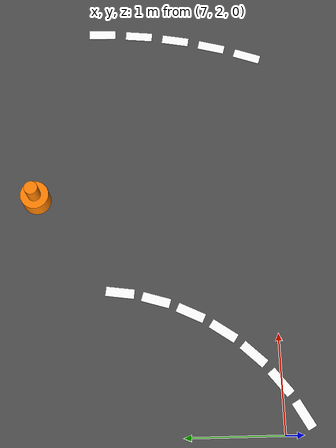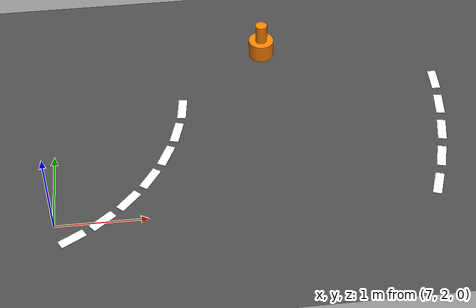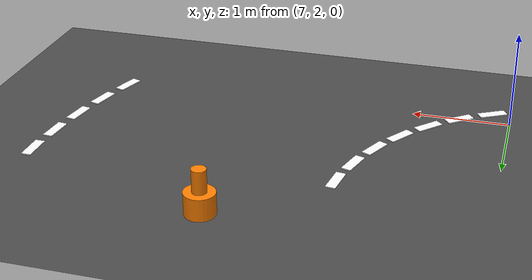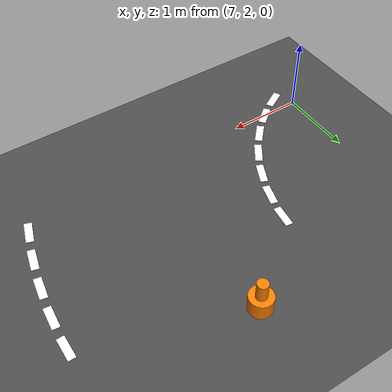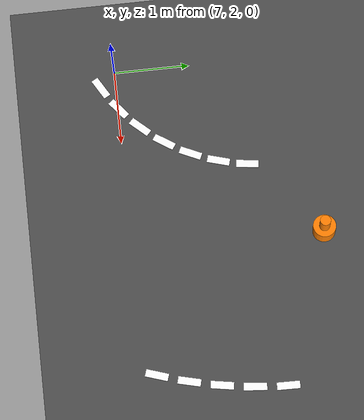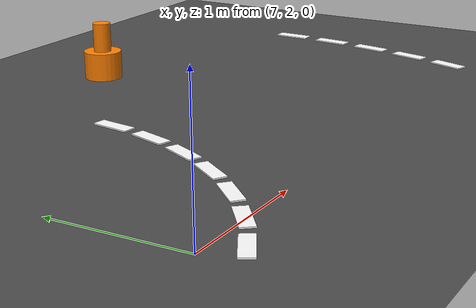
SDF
<sdf version="1.10">
 <world name="igvc_autonav">
  <model name="ground_plane">
   <static>true</static>
   <link name="link">
    <collision name="collision">
     <geometry><plane><normal>0 0 1</normal><size>60 60</size></plane></geometry>
     <surface><friction><ode><mu>0.80000000000000004</mu><mu2>0.80000000000000004</mu2></ode></friction></surface>
    </collision>
    <visual name="visual">
     <geometry><plane><normal>0 0 1</normal><size>60 60</size></plane></geometry>
     <material>
      <ambient>0.25 0.25 0.25 1</ambient>
      <diffuse>0.300000012 0.300000012 0.300000012 1</diffuse>
      <specular>0.100000001 0.100000001 0.100000001 1</specular>
     </material>
    </visual>
    <inertial>
     <mass>1</mass>
     <inertia><ixx>1</ixx><ixy>0</ixy><ixz>0</ixz><iyy>1</iyy><iyz>0</iyz><izz>1</izz></inertia>
    </inertial>
   </link>
  </model>
  <model name="lane_inner_36">
   <static>true</static>
   <pose>7.1943000000000001 1.8037000000000001 0.01 0 0 0.51720000000000022</pose>
   <link name="link">
    <visual name="visual">
     <geometry><box><size>0.29999999999999999 0.10000000000000001 0.01</size></box></geometry>
     <material><ambient>1 1 1 1</ambient><diffuse>1 1 1 1</diffuse><emissive>1 1 1 1</emissive></material>
    </visual>
    <inertial>
     <mass>1</mass>
     <inertia><ixx>1</ixx><ixy>0</ixy><ixz>0</ixz><iyy>1</iyy><iyz>0</iyz><izz>1</izz></inertia>
    </inertial>
   </link>
  </model>
  <model name="lane_inner_37">
   <static>true</static>
   <pose>7.5156000000000001 2.0118 0.01 0 0 0.67049999999999998</pose>
   <link name="link">
    <visual name="visual">
     <geometry><box><size>0.29999999999999999 0.10000000000000001 0.01</size></box></geometry>
     <material><ambient>1 1 1 1</ambient><diffuse>1 1 1 1</diffuse><emissive>1 1 1 1</emissive></material>
    </visual>
    <inertial>
     <mass>1</mass>
     <inertia><ixx>1</ixx><ixy>0</ixy><ixz>0</ixz><iyy>1</iyy><iyz>0</iyz><izz>1</izz></inertia>
    </inertial>
   </link>
  </model>
  <model name="lane_inner_38">
   <static>true</static>
   <pose>7.8013000000000003 2.2664 0.01 0 0 0.82369999999999999</pose>
   <link name="link">
    <visual name="visual">
     <geometry><box><size>0.29999999999999999 0.10000000000000001 0.01</size></box></geometry>
     <material><ambient>1 1 1 1</ambient><diffuse>1 1 1 1</diffuse><emissive>1 1 1 1</emissive></material>
    </visual>
    <inertial>
     <mass>1</mass>
     <inertia><ixx>1</ixx><ixy>0</ixy><ixz>0</ixz><iyy>1</iyy><iyz>0</iyz><izz>1</izz></inertia>
    </inertial>
   </link>
  </model>
  <model name="lane_inner_39">
   <static>true</static>
   <pose>8.0448000000000004 2.5617000000000001 0.01 0 0 0.9770000000000002</pose>
   <link name="link">
    <visual name="visual">
     <geometry><box><size>0.29999999999999999 0.10000000000000001 0.01</size></box></geometry>
     <material><ambient>1 1 1 1</ambient><diffuse>1 1 1 1</diffuse><emissive>1 1 1 1</emissive></material>
    </visual>
    <inertial>
     <mass>1</mass>
     <inertia><ixx>1</ixx><ixy>0</ixy><ixz>0</ixz><iyy>1</iyy><iyz>0</iyz><izz>1</izz></inertia>
    </inertial>
   </link>
  </model>
  <model name="lane_inner_40">
   <static>true</static>
   <pose>8.2403999999999993 2.8906999999999998 0.01 0 0 1.1302000000000001</pose>
   <link name="link">
    <visual name="visual">
     <geometry><box><size>0.29999999999999999 0.10000000000000001 0.01</size></box></geometry>
     <material><ambient>1 1 1 1</ambient><diffuse>1 1 1 1</diffuse><emissive>1 1 1 1</emissive></material>
    </visual>
    <inertial>
     <mass>1</mass>
     <inertia><ixx>1</ixx><ixy>0</ixy><ixz>0</ixz><iyy>1</iyy><iyz>0</iyz><izz>1</izz></inertia>
    </inertial>
   </link>
  </model>
  <model name="lane_inner_41">
   <static>true</static>
   <pose>8.3834999999999997 3.2456999999999998 0.01 0 0 1.2835000000000003</pose>
   <link name="link">
    <visual name="visual">
     <geometry><box><size>0.29999999999999999 0.10000000000000001 0.01</size></box></geometry>
     <material><ambient>1 1 1 1</ambient><diffuse>1 1 1 1</diffuse><emissive>1 1 1 1</emissive></material>
    </visual>
    <inertial>
     <mass>1</mass>
     <inertia><ixx>1</ixx><ixy>0</ixy><ixz>0</ixz><iyy>1</iyy><iyz>0</iyz><izz>1</izz></inertia>
    </inertial>
   </link>
  </model>
  <model name="lane_inner_42">
   <static>true</static>
   <pose>8.4707000000000008 3.6183999999999998 0.01 0 0 1.4367000000000001</pose>
   <link name="link">
    <visual name="visual">
     <geometry><box><size>0.29999999999999999 0.10000000000000001 0.01</size></box></geometry>
     <material><ambient>1 1 1 1</ambient><diffuse>1 1 1 1</diffuse><emissive>1 1 1 1</emissive></material>
    </visual>
    <inertial>
     <mass>1</mass>
     <inertia><ixx>1</ixx><ixy>0</ixy><ixz>0</ixz><iyy>1</iyy><iyz>0</iyz><izz>1</izz></inertia>
    </inertial>
   </link>
  </model>
  <model name="lane_outer_49">
   <static>true</static>
   <pose>11.176299999999999 2.1408999999999998 0.01 0 0 1.2451000000000001</pose>
   <link name="link">
    <visual name="visual">
     <geometry><box><size>0.29999999999999999 0.10000000000000001 0.01</size></box></geometry>
     <material><ambient>1 1 1 1</ambient><diffuse>1 1 1 1</diffuse><emissive>1 1 1 1</emissive></material>
    </visual>
    <inertial>
     <mass>1</mass>
     <inertia><ixx>1</ixx><ixy>0</ixy><ixz>0</ixz><iyy>1</iyy><iyz>0</iyz><izz>1</izz></inertia>
    </inertial>
   </link>
  </model>
  <model name="lane_outer_50">
   <static>true</static>
   <pose>11.3034 2.5426000000000002 0.01 0 0 1.3218000000000001</pose>
   <link name="link">
    <visual name="visual">
     <geometry><box><size>0.29999999999999999 0.10000000000000001 0.01</size></box></geometry>
     <material><ambient>1 1 1 1</ambient><diffuse>1 1 1 1</diffuse><emissive>1 1 1 1</emissive></material>
    </visual>
    <inertial>
     <mass>1</mass>
     <inertia><ixx>1</ixx><ixy>0</ixy><ixz>0</ixz><iyy>1</iyy><iyz>0</iyz><izz>1</izz></inertia>
    </inertial>
   </link>
  </model>
  <model name="lane_outer_51">
   <static>true</static>
   <pose>11.3994 2.9527999999999999 0.01 0 0 1.3984000000000001</pose>
   <link name="link">
    <visual name="visual">
     <geometry><box><size>0.29999999999999999 0.10000000000000001 0.01</size></box></geometry>
     <material><ambient>1 1 1 1</ambient><diffuse>1 1 1 1</diffuse><emissive>1 1 1 1</emissive></material>
    </visual>
    <inertial>
     <mass>1</mass>
     <inertia><ixx>1</ixx><ixy>0</ixy><ixz>0</ixz><iyy>1</iyy><iyz>0</iyz><izz>1</izz></inertia>
    </inertial>
   </link>
  </model>
  <model name="lane_outer_52">
   <static>true</static>
   <pose>11.463699999999999 3.3692000000000002 0.01 0 0 1.4750000000000001</pose>
   <link name="link">
    <visual name="visual">
     <geometry><box><size>0.29999999999999999 0.10000000000000001 0.01</size></box></geometry>
     <material><ambient>1 1 1 1</ambient><diffuse>1 1 1 1</diffuse><emissive>1 1 1 1</emissive></material>
    </visual>
    <inertial>
     <mass>1</mass>
     <inertia><ixx>1</ixx><ixy>0</ixy><ixz>0</ixz><iyy>1</iyy><iyz>0</iyz><izz>1</izz></inertia>
    </inertial>
   </link>
  </model>
  <model name="lane_outer_53">
   <static>true</static>
   <pose>11.496 3.7892999999999999 0.01 0 0 1.5501</pose>
   <link name="link">
    <visual name="visual">
     <geometry><box><size>0.29999999999999999 0.10000000000000001 0.01</size></box></geometry>
     <material><ambient>1 1 1 1</ambient><diffuse>1 1 1 1</diffuse><emissive>1 1 1 1</emissive></material>
    </visual>
    <inertial>
     <mass>1</mass>
     <inertia><ixx>1</ixx><ixy>0</ixy><ixz>0</ixz><iyy>1</iyy><iyz>0</iyz><izz>1</izz></inertia>
    </inertial>
   </link>
  </model>
  <model name="cone_nml_1">
   <static>true</static>
   <link name="link">
    <collision name="collision_base">
     <geometry><cylinder><radius>0.14999999999999999</radius><length>0.22</length></cylinder></geometry>
     <pose>0 0 0.11 0 0 0</pose>
    </collision>
    <visual name="visual_base">
     <geometry><cylinder><radius>0.14999999999999999</radius><length>0.22</length></cylinder></geometry>
     <pose>0 0 0.11 0 0 0</pose>
     <material>
      <ambient>1 0.5 0 1</ambient>
      <diffuse>1 0.5 0 1</diffuse>
      <specular>0.300000012 0.300000012 0.300000012 1</specular>
     </material>
    </visual>
    <collision name="collision_top">
     <geometry>
      <cylinder><radius>0.070000000000000007</radius><length>0.23000000000000001</length></cylinder>
     </geometry>
     <pose>0 0 0.33500000000000002 0 0 0</pose>
    </collision>
    <visual name="visual_top">
     <geometry>
      <cylinder><radius>0.070000000000000007</radius><length>0.23000000000000001</length></cylinder>
     </geometry>
     <pose>0 0 0.33500000000000002 0 0 0</pose>
     <material>
      <ambient>1 0.5 0 1</ambient>
      <diffuse>1 0.5 0 1</diffuse>
      <specular>0.300000012 0.300000012 0.300000012 1</specular>
     </material>
    </visual>
    <inertial>
     <mass>1</mass>
     <inertia><ixx>1</ixx><ixy>0</ixy><ixz>0</ixz><iyy>1</iyy><iyz>0</iyz><izz>1</izz></inertia>
    </inertial>
   </link>
   <pose>9.5 4.5 0 0 0 0</pose>
  </model>
 </world>
</sdf>
